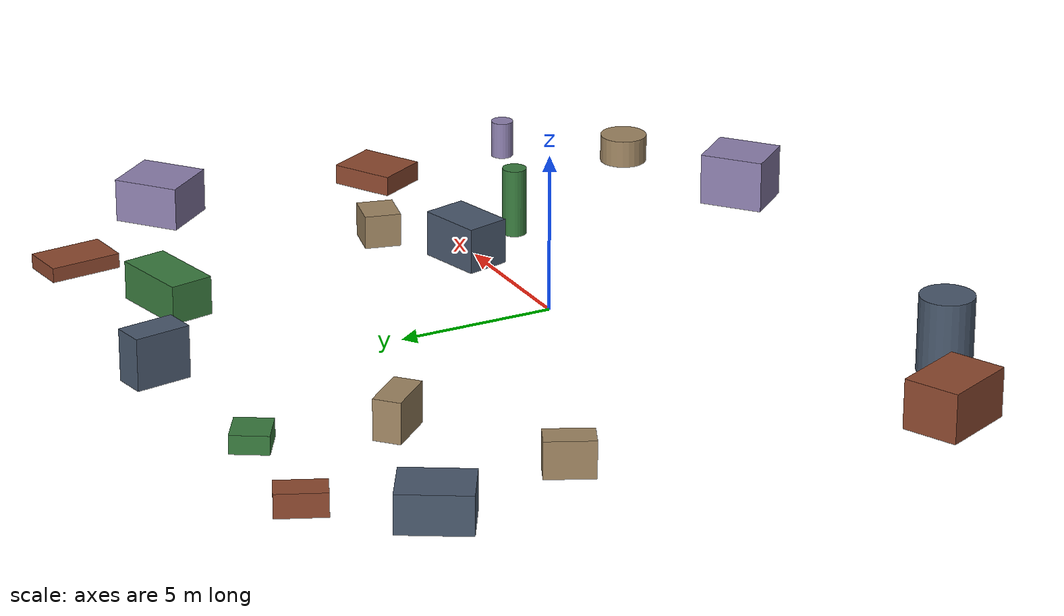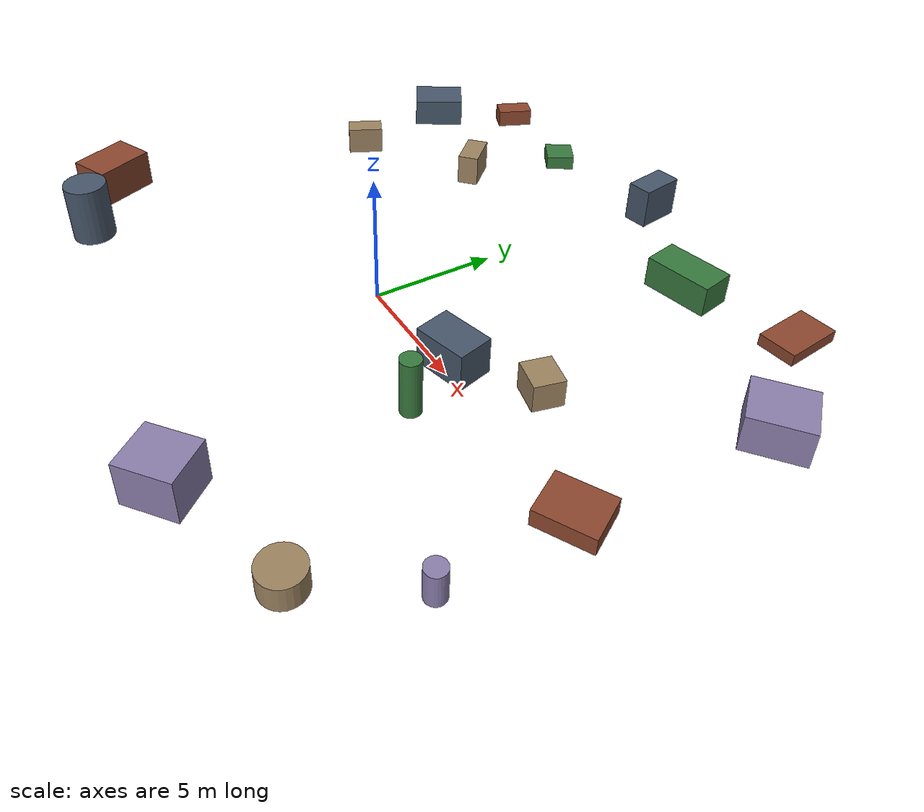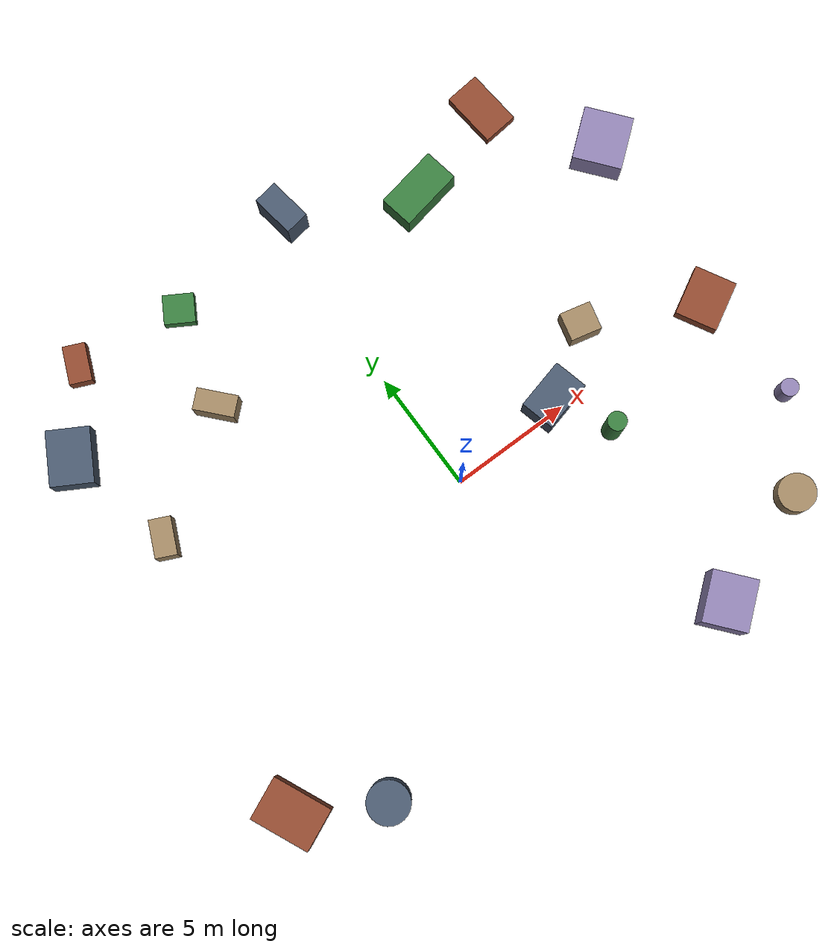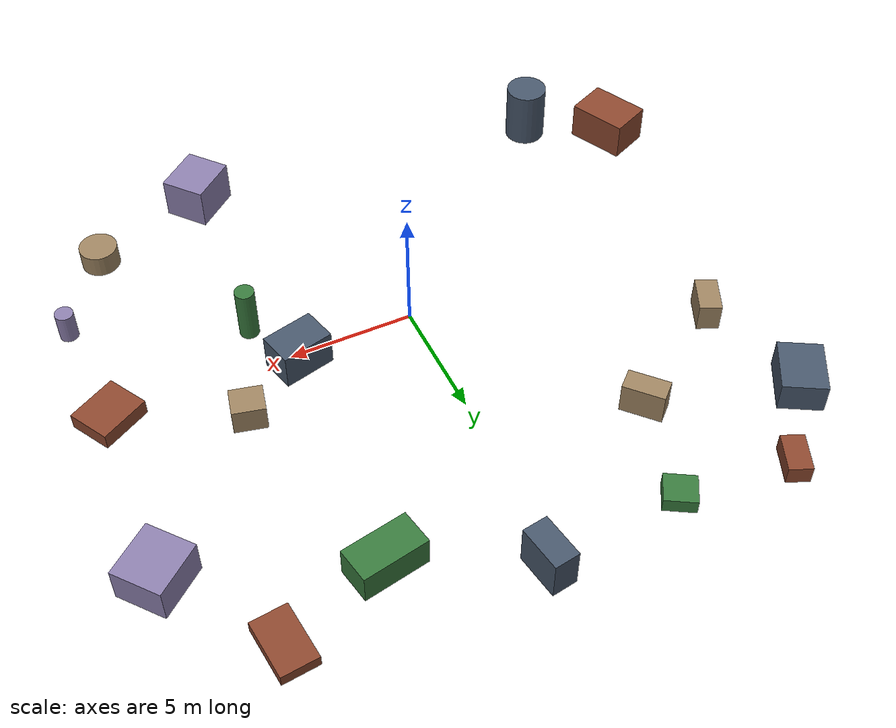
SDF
<sdf version="1.10">
 <world name="robotx_task1_uav_view">
  <gravity>0 0 -9.81</gravity>
  <physics name="physics" type="ode">
   <max_step_size>0.002</max_step_size>
   <real_time_factor>1.0</real_time_factor>
  </physics>
  <scene>
   <ambient>0.20 0.20 0.20 1.0</ambient>
   <background>0.58 0.70 0.88 1.0</background>
   <shadows>true</shadows>
   <grid>false</grid>
  </scene>
  <light name="sun" type="directional">
   <pose>0 0 300 0 0 0</pose>
   <diffuse>0.78 0.78 0.78 1.0</diffuse>
   <specular>0.45 0.45 0.45 1.0</specular>
   <direction>0.20 -0.08 -1.0</direction>
   <attenuation>
    <range>2500</range>
    <constant>0.85</constant>
    <linear>0.001</linear>
    <quadratic>0.00005</quadratic>
   </attenuation>
  </light>
  <plugin filename="gz-sim-physics-system" name="gz::sim::systems::Physics"/>
  <plugin filename="gz-sim-user-commands-system" name="gz::sim::systems::UserCommands"/>
  <plugin filename="gz-sim-scene-broadcaster-system" name="gz::sim::systems::SceneBroadcaster"/>
  <plugin filename="gz-sim-sensors-system" name="gz::sim::systems::Sensors">
   <render_engine>ogre2</render_engine>
  </plugin>
  <model name="scene_clutter_box_000">
   <static>true</static>
   <pose>7.471 2.172 0.556 0 0 2.911287</pose>
   <link name="link">
    <visual name="v">
     <geometry><box><size>1.281 1.157 1.072</size></box></geometry>
     <material><ambient>0.45 0.38 0.32 1.0</ambient><diffuse>0.62 0.52 0.38 1.0</diffuse></material>
    </visual>
   </link>
  </model>
  <model name="scene_clutter_box_001">
   <static>true</static>
   <pose>0.686 12.700 0.845 0 0 1.723351</pose>
   <link name="link">
    <visual name="v">
     <geometry><box><size>1.796 1.004 1.649</size></box></geometry>
     <material><ambient>0.18 0.22 0.28 1.0</ambient><diffuse>0.28 0.34 0.42 1.0</diffuse></material>
    </visual>
   </link>
  </model>
  <model name="scene_clutter_box_002">
   <static>true</static>
   <pose>9.715 11.612 0.257 0 0 -1.471157</pose>
   <link name="link">
    <visual name="v">
     <geometry><box><size>2.308 1.442 0.473</size></box></geometry>
     <material><ambient>0.35 0.16 0.12 1.0</ambient><diffuse>0.55 0.28 0.18 1.0</diffuse></material>
    </visual>
   </link>
  </model>
  <model name="scene_clutter_box_003">
   <static>true</static>
   <pose>5.554 10.223 0.635 0 0 0.186933</pose>
   <link name="link">
    <visual name="v">
     <geometry><box><size>2.630 1.406 1.231</size></box></geometry>
     <material><ambient>0.12 0.30 0.14 1.0</ambient><diffuse>0.22 0.48 0.24 1.0</diffuse></material>
    </visual>
   </link>
  </model>
  <model name="scene_clutter_box_004">
   <static>true</static>
   <pose>5.318 -9.866 0.856 0 0 2.265919</pose>
   <link name="link">
    <visual name="v">
     <geometry><box><size>1.816 2.066 1.672</size></box></geometry>
     <material><ambient>0.40 0.35 0.50 1.0</ambient><diffuse>0.55 0.50 0.68 1.0</diffuse></material>
    </visual>
   </link>
  </model>
  <model name="scene_clutter_box_005">
   <static>true</static>
   <pose>-10.535 4.947 0.602 0 0 1.137388</pose>
   <link name="link">
    <visual name="v">
     <geometry><box><size>1.519 0.878 1.164</size></box></geometry>
     <material><ambient>0.45 0.38 0.32 1.0</ambient><diffuse>0.62 0.52 0.38 1.0</diffuse></material>
    </visual>
   </link>
  </model>
  <model name="scene_clutter_box_006">
   <static>true</static>
   <pose>-11.618 9.624 0.628 0 0 2.621139</pose>
   <link name="link">
    <visual name="v">
     <geometry><box><size>1.733 2.218 1.217</size></box></geometry>
     <material><ambient>0.18 0.22 0.28 1.0</ambient><diffuse>0.28 0.34 0.42 1.0</diffuse></material>
    </visual>
   </link>
  </model>
  <model name="scene_clutter_box_007">
   <static>true</static>
   <pose>-9.328 12.600 0.392 0 0 -1.979967</pose>
   <link name="link">
    <visual name="v">
     <geometry><box><size>1.543 0.907 0.744</size></box></geometry>
     <material><ambient>0.35 0.16 0.12 1.0</ambient><diffuse>0.55 0.28 0.18 1.0</diffuse></material>
    </visual>
   </link>
  </model>
  <model name="scene_clutter_cyl_008">
   <static>true</static>
   <pose>5.968 -1.908 1.156 0 0 1.379681</pose>
   <link name="link">
    <visual name="v">
     <geometry><cylinder><radius>0.386</radius><length>2.212</length></cylinder></geometry>
     <material><ambient>0.12 0.30 0.14 1.0</ambient><diffuse>0.22 0.48 0.24 1.0</diffuse></material>
    </visual>
   </link>
  </model>
  <model name="scene_clutter_cyl_009">
   <static>true</static>
   <pose>12.349 -4.759 0.659 0 0 0.907477</pose>
   <link name="link">
    <visual name="v">
     <geometry><cylinder><radius>0.364</radius><length>1.217</length></cylinder></geometry>
     <material><ambient>0.40 0.35 0.50 1.0</ambient><diffuse>0.55 0.50 0.68 1.0</diffuse></material>
    </visual>
   </link>
  </model>
  <model name="scene_clutter_cyl_010">
   <static>true</static>
   <pose>10.102 -8.162 0.501 0 0 2.099843</pose>
   <link name="link">
    <visual name="v">
     <geometry><cylinder><radius>0.766</radius><length>0.902</length></cylinder></geometry>
     <material><ambient>0.45 0.38 0.32 1.0</ambient><diffuse>0.62 0.52 0.38 1.0</diffuse></material>
    </visual>
   </link>
  </model>
  <model name="scene_clutter_box_011">
   <static>true</static>
   <pose>4.792 0.410 0.750 0 0 1.817983</pose>
   <link name="link">
    <visual name="v">
     <geometry><box><size>1.422 2.103 1.461</size></box></geometry>
     <material><ambient>0.18 0.22 0.28 1.0</ambient><diffuse>0.28 0.34 0.42 1.0</diffuse></material>
    </visual>
   </link>
  </model>
  <model name="scene_clutter_box_012">
   <static>true</static>
   <pose>-12.631 -6.374 0.798 0 0 -2.719411</pose>
   <link name="link">
    <visual name="v">
     <geometry><box><size>1.780 2.460 1.556</size></box></geometry>
     <material><ambient>0.35 0.16 0.12 1.0</ambient><diffuse>0.55 0.28 0.18 1.0</diffuse></material>
    </visual>
   </link>
  </model>
  <model name="scene_clutter_box_013">
   <static>true</static>
   <pose>-4.854 12.073 0.316 0 0 -2.107233</pose>
   <link name="link">
    <visual name="v">
     <geometry><box><size>1.181 1.247 0.591</size></box></geometry>
     <material><ambient>0.12 0.30 0.14 1.0</ambient><diffuse>0.22 0.48 0.24 1.0</diffuse></material>
    </visual>
   </link>
  </model>
  <model name="scene_clutter_box_014">
   <static>true</static>
   <pose>12.626 7.509 0.718 0 0 2.253825</pose>
   <link name="link">
    <visual name="v">
     <geometry><box><size>1.996 2.160 1.395</size></box></geometry>
     <material><ambient>0.40 0.35 0.50 1.0</ambient><diffuse>0.55 0.50 0.68 1.0</diffuse></material>
    </visual>
   </link>
  </model>
  <model name="scene_clutter_box_015">
   <static>true</static>
   <pose>-5.880 7.991 0.669 0 0 -2.405188</pose>
   <link name="link">
    <visual name="v">
     <geometry><box><size>0.871 1.654 1.298</size></box></geometry>
     <material><ambient>0.45 0.38 0.32 1.0</ambient><diffuse>0.62 0.52 0.38 1.0</diffuse></material>
    </visual>
   </link>
  </model>
  <model name="scene_clutter_cyl_016">
   <static>true</static>
   <pose>-9.435 -8.171 1.248 0 0 -1.966042</pose>
   <link name="link">
    <visual name="v">
     <geometry><cylinder><radius>0.844</radius><length>2.396</length></cylinder></geometry>
     <material><ambient>0.18 0.22 0.28 1.0</ambient><diffuse>0.28 0.34 0.42 1.0</diffuse></material>
    </visual>
   </link>
  </model>
  <model name="scene_clutter_box_017">
   <static>true</static>
   <pose>12.101 0.017 0.341 0 0 -1.062014</pose>
   <link name="link">
    <visual name="v">
     <geometry><box><size>1.733 2.067 0.642</size></box></geometry>
     <material><ambient>0.35 0.16 0.12 1.0</ambient><diffuse>0.55 0.28 0.18 1.0</diffuse></material>
    </visual>
   </link>
  </model>
  <model name="uav_dataset_camera">
   <static>false</static>
   <pose>0 0 26 0 0 0</pose>
   <plugin filename="librobotx_overhead_motion_plugin.dylib" name="robotx::OverheadMotionPlugin">
    <radius_x_m>13.73380</radius_x_m>
    <radius_y_m>9.81821</radius_y_m>
    <angular_speed_rad_s>0.039176</angular_speed_rad_s>
    <phase_rad>5.618244</phase_rad>
    <z_wobble_m>0.11240</z_wobble_m>
    <z_wobble_hz>0.07611</z_wobble_hz>
    <z_wobble_phase_rad>2.910885</z_wobble_phase_rad>
   </plugin>
   <link name="camera_link">
    <gravity>false</gravity>
    <sensor name="top_down_rgb" type="camera">
     <always_on>true</always_on>
     <update_rate>20</update_rate>
     <pose>0 0 0 0 1.57079632679 0</pose>
     <camera>
      <horizontal_fov>1.05</horizontal_fov>
      <image><width>1920</width><height>1080</height><format>R8G8B8</format></image>
      <clip><near>0.2</near><far>600</far></clip>
     </camera>
     <topic>/robotx/uav/camera/image_raw</topic>
     <visualize>true</visualize>
    </sensor>
   </link>
  </model>
 </world>
</sdf>
